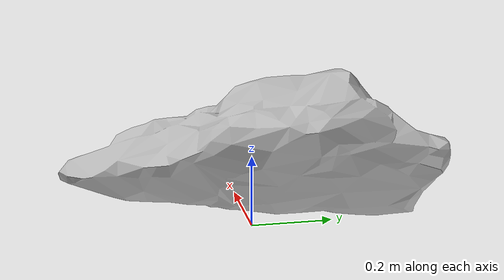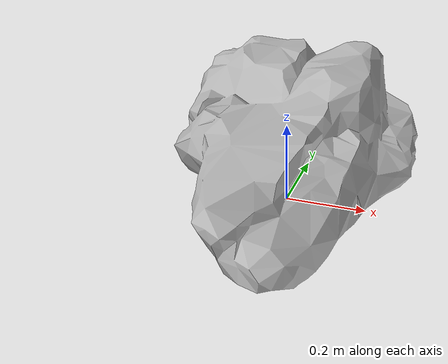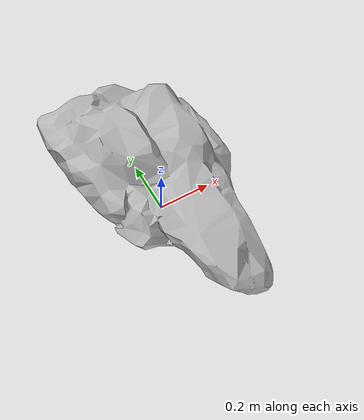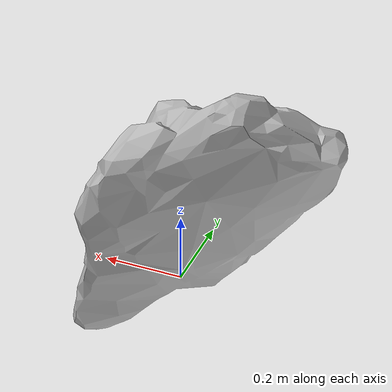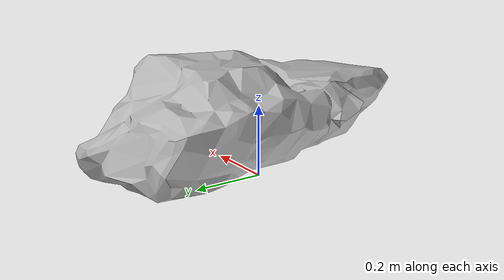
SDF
<?xml version="1.0" ?>
<sdf version="1.6">
  <model name='Stone_02'>
    <pose frame=''>0 0 0.2 0 -0 0</pose>
    <!-- The model will move on its own, if it is not a static model.
         I tried to fix this, but couldn't find a solution. -->
    <static>true</static>
    <allow_auto_disable>true</allow_auto_disable>
    <link name='Stone_02_link'>
      <inertial>
        <!-- Volume: 0.071326 m^3, Density: ~2000 kg/m^3 -->
        <mass>142</mass>
        <!-- Inertia Tensor is :
            |  0.003534   0.000463   0.000122 |
            |  0.000463   0.001486  -0.000015 |
            |  0.000122  -0.000015   0.004391 | -->
        <inertia>
          <ixx>0.003534</ixx>
          <ixy>0.000463</ixy>
          <ixz>0.000122</ixz>
          <iyy>0.001486</iyy>
          <iyz>-0.000015</iyz>
          <izz>0.004391</izz>
        </inertia>
        <!-- Center of Mass  is 0.001732 0.073943 -0.017533 -->
        <pose>0.001732 0.073943 -0.017533 0 0 0</pose>
      </inertial>
      <collision name='collision'>
        <pose>0 0 0 0 -0 0</pose>
        <geometry>
          <box>
            <!-- TODO: Better collision box. Maybe an ultra low poly rock. -->
            <size>0.597647 1.000000 0.299114</size>
          </box>
        </geometry>
        <max_contacts>10</max_contacts>
        <surface>
          <contact>
            <ode/>
          </contact>
          <bounce/>
          <friction>
            <ode>
              <mu>10</mu>
              <mu2>10</mu2>
            </ode>
          </friction>
        </surface>
      </collision>
      <visual name='visual'>
        <pose>0 0 0 0 -0 0</pose>
        <geometry>
          <mesh>
            <uri>model://stone_02/meshes/stone_02.dae</uri>
            <scale>1 1 1</scale>
          </mesh>
        </geometry>
      </visual>
      <self_collide>0</self_collide>
      <enable_wind>0</enable_wind>
      <kinematic>0</kinematic>
    </link>
  </model>
</sdf>
